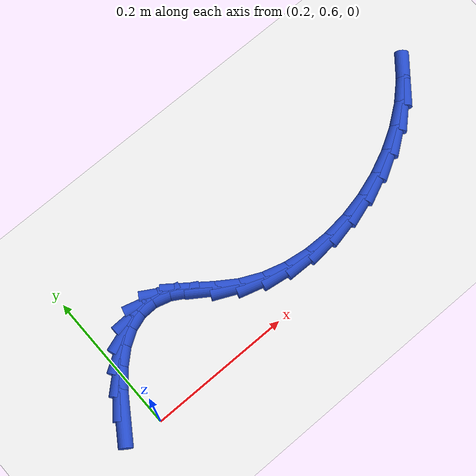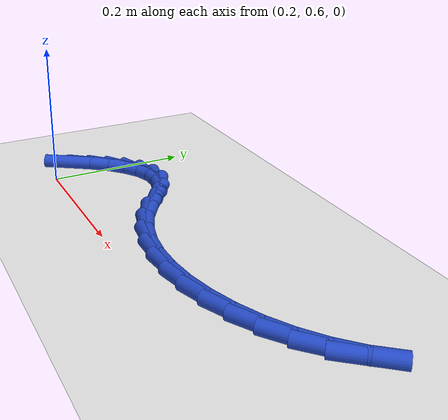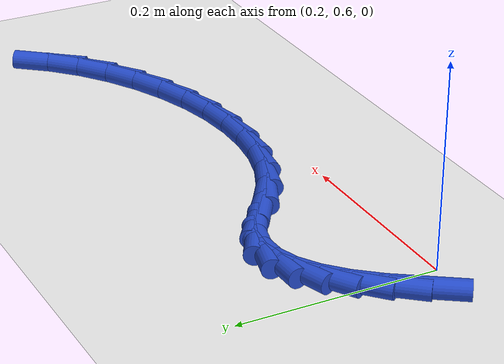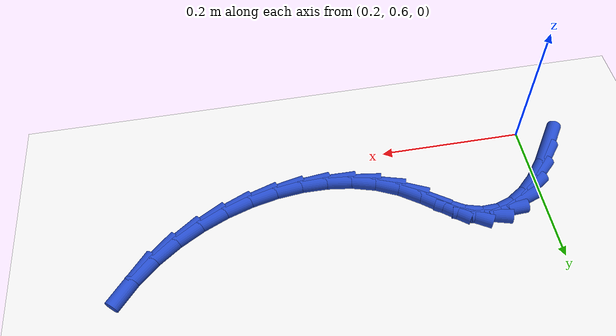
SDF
<sdf version="1.6">
 <world name="default">
  <model name="ground_plane">
   <static>1</static>
   <link name="link">
    <collision name="collision">
     <geometry><plane><normal>0 0 1</normal><size>100 100</size></plane></geometry>
     <surface><friction><ode><mu>100</mu><mu2>50</mu2></ode></friction></surface>
    </collision>
    <visual name="visual">
     <cast_shadows>0</cast_shadows>
     <geometry><plane><normal>0 0 1</normal><size>100 100</size></plane></geometry>
     <material>
      <script><uri>file://media/materials/scripts/gazebo.material</uri><name>Gazebo/WhiteGlow</name></script>
     </material>
    </visual>
   </link>
  </model>
  <model name="line">
   <link name="link_18">
    <pose>0.1667666208307295 0.6340892164219193 0.01 0 1.57 0.9787274159808793</pose>
    <collision name="collision">
     <geometry><cylinder><radius>0.01</radius><length>0.08</length></cylinder></geometry>
    </collision>
    <visual name="visual">
     <material>
      <script><name>Gazebo/Blue</name><uri>file://media/materials/scripts/gazebo.material</uri></script>
     </material>
     <geometry><cylinder><radius>0.01</radius><length>0.08</length></cylinder></geometry>
    </visual>
   </link>
   <link name="link_19">
    <pose>0.18550670706476427 0.6619531862727903 0.01 0 1.57 0.8787457110928412</pose>
    <collision name="collision">
     <geometry><cylinder><radius>0.01</radius><length>0.08</length></cylinder></geometry>
    </collision>
    <visual name="visual">
     <material>
      <script><name>Gazebo/Blue</name><uri>file://media/materials/scripts/gazebo.material</uri></script>
     </material>
     <geometry><cylinder><radius>0.01</radius><length>0.08</length></cylinder></geometry>
    </visual>
   </link>
   <link name="link_20">
    <pose>0.2050734592063324 0.685562020978213 0.01 0 1.57 0.744572715721797</pose>
    <collision name="collision">
     <geometry><cylinder><radius>0.01</radius><length>0.08</length></cylinder></geometry>
    </collision>
    <visual name="visual">
     <material>
      <script><name>Gazebo/Blue</name><uri>file://media/materials/scripts/gazebo.material</uri></script>
     </material>
     <geometry><cylinder><radius>0.01</radius><length>0.08</length></cylinder></geometry>
    </visual>
   </link>
   <link name="link_21">
    <pose>0.22543595741707578 0.7043262644007712 0.01 0 1.57 0.5628635048004264</pose>
    <collision name="collision">
     <geometry><cylinder><radius>0.01</radius><length>0.08</length></cylinder></geometry>
    </collision>
    <visual name="visual">
     <material>
      <script><name>Gazebo/Blue</name><uri>file://media/materials/scripts/gazebo.material</uri></script>
     </material>
     <geometry><cylinder><radius>0.01</radius><length>0.08</length></cylinder></geometry>
    </visual>
   </link>
   <link name="link_22">
    <pose>0.24656328185863646 0.7176564604030499 0.01 0 1.57 0.3225578829213657</pose>
    <collision name="collision">
     <geometry><cylinder><radius>0.01</radius><length>0.08</length></cylinder></geometry>
    </collision>
    <visual name="visual">
     <material>
      <script><name>Gazebo/Blue</name><uri>file://media/materials/scripts/gazebo.material</uri></script>
     </material>
     <geometry><cylinder><radius>0.01</radius><length>0.08</length></cylinder></geometry>
    </visual>
   </link>
   <link name="link_23">
    <pose>0.26842451269265644 0.7249631528476334 0.01 0 1.57 0.03073513604448013</pose>
    <collision name="collision">
     <geometry><cylinder><radius>0.01</radius><length>0.08</length></cylinder></geometry>
    </collision>
    <visual name="visual">
     <material>
      <script><name>Gazebo/Blue</name><uri>file://media/materials/scripts/gazebo.material</uri></script>
     </material>
     <geometry><cylinder><radius>0.01</radius><length>0.08</length></cylinder></geometry>
    </visual>
   </link>
   <link name="link_24">
    <pose>0.29098873008077775 0.7256568855971066 0.01 0 1.57 -0.27310940792835076</pose>
    <collision name="collision">
     <geometry><cylinder><radius>0.01</radius><length>0.08</length></cylinder></geometry>
    </collision>
    <visual name="visual">
     <material>
      <script><name>Gazebo/Blue</name><uri>file://media/materials/scripts/gazebo.material</uri></script>
     </material>
     <geometry><cylinder><radius>0.01</radius><length>0.08</length></cylinder></geometry>
    </visual>
   </link>
   <link name="link_25">
    <pose>0.3142250141846421 0.7191482025140533 0.01 0 1.57 -0.5346978834300044</pose>
    <collision name="collision">
     <geometry><cylinder><radius>0.01</radius><length>0.08</length></cylinder></geometry>
    </collision>
    <visual name="visual">
     <material>
      <script><name>Gazebo/Blue</name><uri>file://media/materials/scripts/gazebo.material</uri></script>
     </material>
     <geometry><cylinder><radius>0.01</radius><length>0.08</length></cylinder></geometry>
    </visual>
   </link>
   <link name="link_26">
    <pose>0.33812722866200473 0.7049922321861407 0.01 0 1.57 -0.6514536763656009</pose>
    <collision name="collision">
     <geometry><cylinder><radius>0.01</radius><length>0.08</length></cylinder></geometry>
    </collision>
    <visual name="visual">
     <material>
      <script><name>Gazebo/Blue</name><uri>file://media/materials/scripts/gazebo.material</uri></script>
     </material>
     <geometry><cylinder><radius>0.01</radius><length>0.08</length></cylinder></geometry>
    </visual>
   </link>
   <link name="link_27">
    <pose>0.36322279691538767 0.6858568435771673 0.01 0 1.57 -0.5943265804608738</pose>
    <collision name="collision">
     <geometry><cylinder><radius>0.01</radius><length>0.08</length></cylinder></geometry>
    </collision>
    <visual name="visual">
     <material>
      <script><name>Gazebo/Blue</name><uri>file://media/materials/scripts/gazebo.material</uri></script>
     </material>
     <geometry><cylinder><radius>0.01</radius><length>0.08</length></cylinder></geometry>
    </visual>
   </link>
   <link name="link_28">
    <pose>0.3905478302028238 0.66738949042095 0.01 0 1.57 -0.4353648797650099</pose>
    <collision name="collision">
     <geometry><cylinder><radius>0.01</radius><length>0.08</length></cylinder></geometry>
    </collision>
    <visual name="visual">
     <material>
      <script><name>Gazebo/Blue</name><uri>file://media/materials/scripts/gazebo.material</uri></script>
     </material>
     <geometry><cylinder><radius>0.01</radius><length>0.08</length></cylinder></geometry>
    </visual>
   </link>
   <link name="link_29">
    <pose>0.4206173248397586 0.6534032545264427 0.01 0 1.57 -0.28005038179543834</pose>
    <collision name="collision">
     <geometry><cylinder><radius>0.01</radius><length>0.08</length></cylinder></geometry>
    </collision>
    <visual name="visual">
     <material>
      <script><name>Gazebo/Blue</name><uri>file://media/materials/scripts/gazebo.material</uri></script>
     </material>
     <geometry><cylinder><radius>0.01</radius><length>0.08</length></cylinder></geometry>
    </visual>
   </link>
   <link name="link_30">
    <pose>0.452947092596216 0.6441049264165343 0.01 0 1.57 -0.14003372184484442</pose>
    <collision name="collision">
     <geometry><cylinder><radius>0.01</radius><length>0.08</length></cylinder></geometry>
    </collision>
    <visual name="visual">
     <material>
      <script><name>Gazebo/Blue</name><uri>file://media/materials/scripts/gazebo.material</uri></script>
     </material>
     <geometry><cylinder><radius>0.01</radius><length>0.08</length></cylinder></geometry>
    </visual>
   </link>
   <link name="link_31">
    <pose>0.48694526950811706 0.6393126696448582 0.01 0 1.57 -0.013342774439727851</pose>
    <collision name="collision">
     <geometry><cylinder><radius>0.01</radius><length>0.08</length></cylinder></geometry>
    </collision>
    <visual name="visual">
     <material>
      <script><name>Gazebo/Blue</name><uri>file://media/materials/scripts/gazebo.material</uri></script>
     </material>
     <geometry><cylinder><radius>0.01</radius><length>0.08</length></cylinder></geometry>
    </visual>
   </link>
   <link name="link_32">
    <pose>0.5220199916113832 0.6388446477650479 0.01 0 1.57 0.10296523522276674</pose>
    <collision name="collision">
     <geometry><cylinder><radius>0.01</radius><length>0.08</length></cylinder></geometry>
    </collision>
    <visual name="visual">
     <material>
      <script><name>Gazebo/Blue</name><uri>file://media/materials/scripts/gazebo.material</uri></script>
     </material>
     <geometry><cylinder><radius>0.01</radius><length>0.08</length></cylinder></geometry>
    </visual>
   </link>
   <link name="link_33">
    <pose>0.5575793949419354 0.6425190243307363 0.01 0 1.57 0.2121188361501036</pose>
    <collision name="collision">
     <geometry><cylinder><radius>0.01</radius><length>0.08</length></cylinder></geometry>
    </collision>
    <visual name="visual">
     <material>
      <script><name>Gazebo/Blue</name><uri>file://media/materials/scripts/gazebo.material</uri></script>
     </material>
     <geometry><cylinder><radius>0.01</radius><length>0.08</length></cylinder></geometry>
    </visual>
   </link>
   <link name="link_34">
    <pose>0.5930316155356954 0.6501539628955569 0.01 0 1.57 0.31732275041235575</pose>
    <collision name="collision">
     <geometry><cylinder><radius>0.01</radius><length>0.08</length></cylinder></geometry>
    </collision>
    <visual name="visual">
     <material>
      <script><name>Gazebo/Blue</name><uri>file://media/materials/scripts/gazebo.material</uri></script>
     </material>
     <geometry><cylinder><radius>0.01</radius><length>0.08</length></cylinder></geometry>
    </visual>
   </link>
   <link name="link_35">
    <pose>0.6277847894285842 0.6615676270131429 0.01 0 1.57 0.4216736990604275</pose>
    <collision name="collision">
     <geometry><cylinder><radius>0.01</radius><length>0.08</length></cylinder></geometry>
    </collision>
    <visual name="visual">
     <material>
      <script><name>Gazebo/Blue</name><uri>file://media/materials/scripts/gazebo.material</uri></script>
     </material>
     <geometry><cylinder><radius>0.01</radius><length>0.08</length></cylinder></geometry>
    </visual>
   </link>
   <link name="link_36">
    <pose>0.6612470526565224 0.6765781802371275 0.01 0 1.57 0.5281745608530213</pose>
    <collision name="collision">
     <geometry><cylinder><radius>0.01</radius><length>0.08</length></cylinder></geometry>
    </collision>
    <visual name="visual">
     <material>
      <script><name>Gazebo/Blue</name><uri>file://media/materials/scripts/gazebo.material</uri></script>
     </material>
     <geometry><cylinder><radius>0.01</radius><length>0.08</length></cylinder></geometry>
    </visual>
   </link>
   <link name="link_37">
    <pose>0.6928265412554321 0.695003786121144 0.01 0 1.57 0.6397564895494025</pose>
    <collision name="collision">
     <geometry><cylinder><radius>0.01</radius><length>0.08</length></cylinder></geometry>
    </collision>
    <visual name="visual">
     <material>
      <script><name>Gazebo/Blue</name><uri>file://media/materials/scripts/gazebo.material</uri></script>
     </material>
     <geometry><cylinder><radius>0.01</radius><length>0.08</length></cylinder></geometry>
    </visual>
   </link>
   <link name="link_38">
    <pose>0.7219313912612343 0.7166626082188258 0.01 0 1.57 0.7592330316116664</pose>
    <collision name="collision">
     <geometry><cylinder><radius>0.01</radius><length>0.08</length></cylinder></geometry>
    </collision>
    <visual name="visual">
     <material>
      <script><name>Gazebo/Blue</name><uri>file://media/materials/scripts/gazebo.material</uri></script>
     </material>
     <geometry><cylinder><radius>0.01</radius><length>0.08</length></cylinder></geometry>
    </visual>
   </link>
   <link name="link_39">
    <pose>0.74796973870985 0.7413728100838058 0.01 0 1.57 0.8891038947510185</pose>
    <collision name="collision">
     <geometry><cylinder><radius>0.01</radius><length>0.08</length></cylinder></geometry>
    </collision>
    <visual name="visual">
     <material>
      <script><name>Gazebo/Blue</name><uri>file://media/materials/scripts/gazebo.material</uri></script>
     </material>
     <geometry><cylinder><radius>0.01</radius><length>0.08</length></cylinder></geometry>
    </visual>
   </link>
  </model>
 </world>
</sdf>
